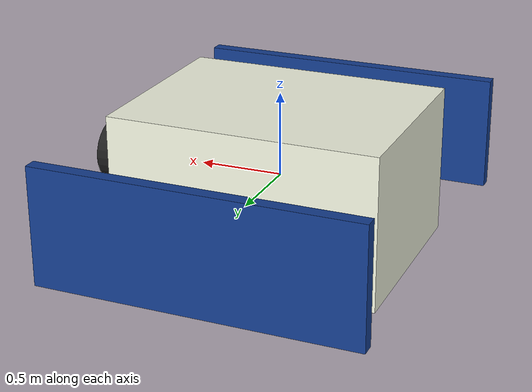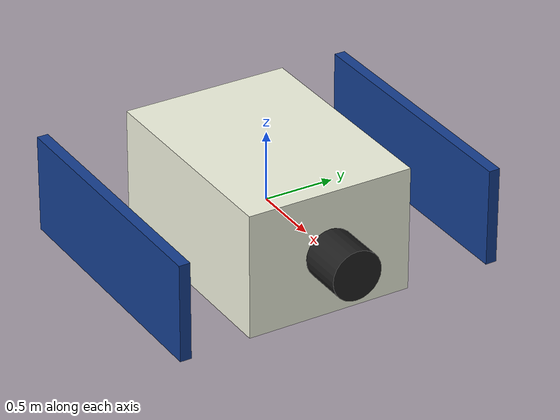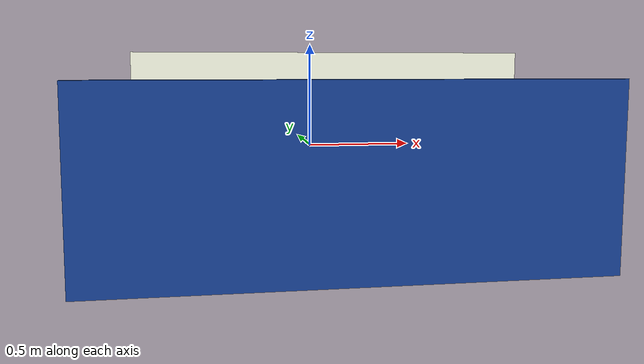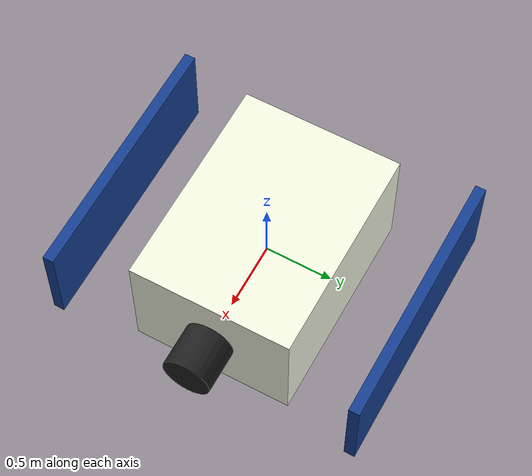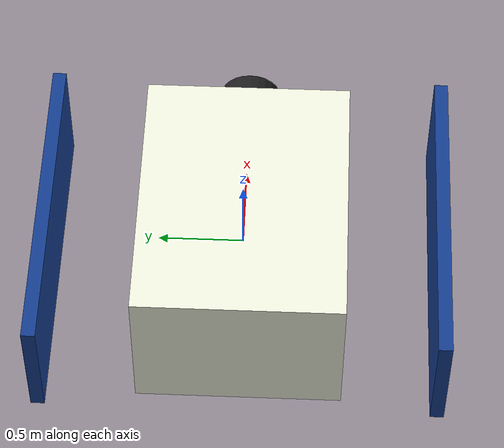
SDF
<?xml version="1.0"?>
<sdf version="1.10">
  <model name="chaser">
    <static>true</static>

    <link name="chaser_body">
      <visual name="bus_visual">
        <pose>0 0 0 0 0 0</pose>
        <geometry>
          <box>
            <size>1.6 1.2 0.9</size>
          </box>
        </geometry>
        <material>
          <ambient>0.82 0.84 0.78 1</ambient>
          <diffuse>0.95 0.96 0.88 1</diffuse>
          <specular>0.35 0.35 0.30 1</specular>
        </material>
      </visual>

      <visual name="left_panel_visual">
        <pose>0 -1.15 0 0 0 0</pose>
        <geometry>
          <box>
            <size>1.9 0.08 0.7</size>
          </box>
        </geometry>
        <material>
          <ambient>0.04 0.08 0.18 1</ambient>
          <diffuse>0.08 0.24 0.56 1</diffuse>
          <specular>0.18 0.35 0.60 1</specular>
        </material>
      </visual>

      <visual name="right_panel_visual">
        <pose>0 1.15 0 0 0 0</pose>
        <geometry>
          <box>
            <size>1.9 0.08 0.7</size>
          </box>
        </geometry>
        <material>
          <ambient>0.04 0.08 0.18 1</ambient>
          <diffuse>0.08 0.24 0.56 1</diffuse>
          <specular>0.18 0.35 0.60 1</specular>
        </material>
      </visual>

      <visual name="camera_visual">
        <pose>0.95 0 0 0 1.57079632679 0</pose>
        <geometry>
          <cylinder>
            <radius>0.18</radius>
            <length>0.35</length>
          </cylinder>
        </geometry>
        <material>
          <ambient>0.05 0.05 0.05 1</ambient>
          <diffuse>0.12 0.12 0.12 1</diffuse>
          <specular>0.50 0.50 0.50 1</specular>
        </material>
      </visual>
    </link>
  </model>
</sdf>
